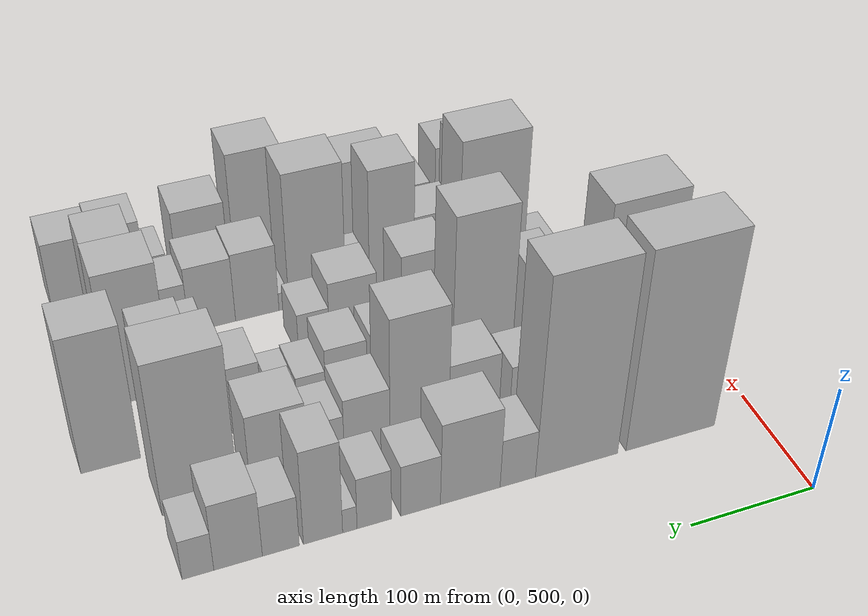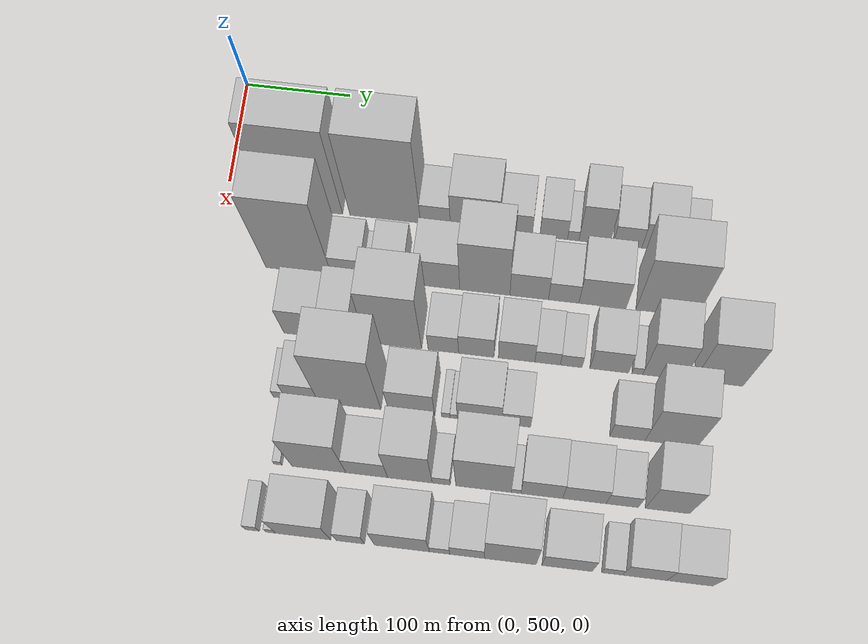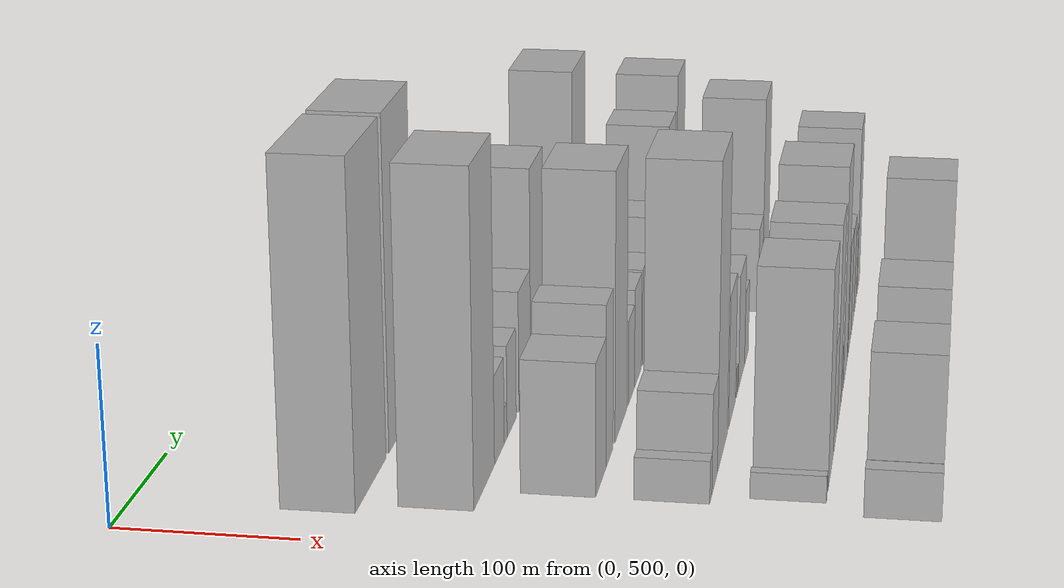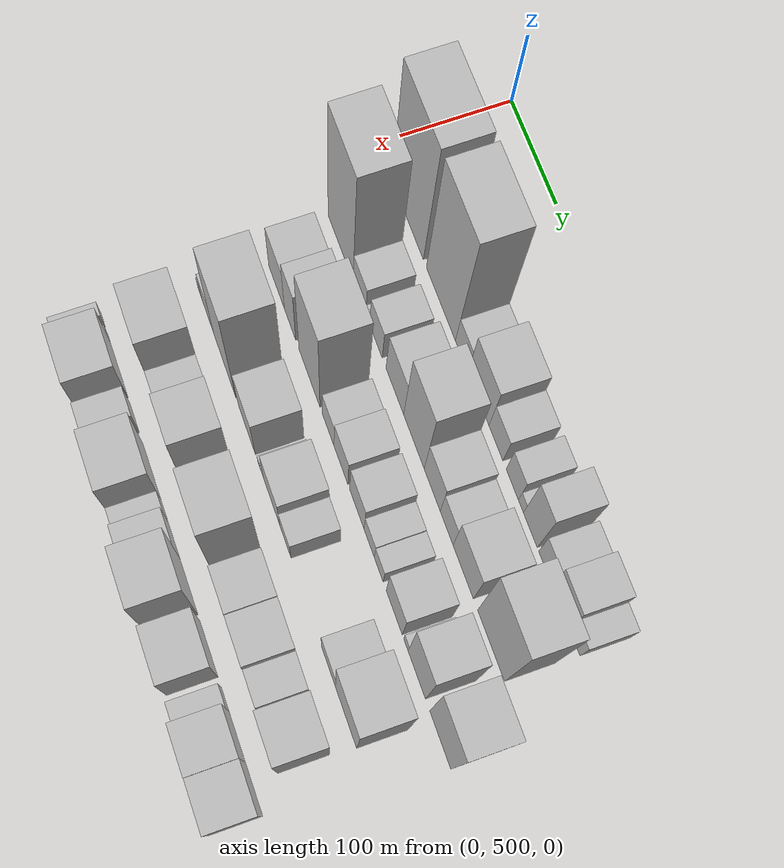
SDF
<sdf version="1.6">
 <world name="default">
  <model name="building_44">
   <static>1</static>
   <pose>100.0000 573.1640 0 0.000000 0.000000 0.000000</pose>
   <link name="link">
    <pose>0 0 96.00 0 0 0</pose>
    <collision name="collision"><geometry><box><size>40.0000 74.3101 192.0000</size></box></geometry></collision>
    <visual name="visual">
     <cast_shadows>0</cast_shadows>
     <geometry><box><size>40.0000 74.3101 192.0000</size></box></geometry>
     <material>
      <script>
       <uri>model://HANNAS_wall/materials/scripts</uri>
       <uri>model://HANNAS_wall/materials/textures</uri>
       <name>vrc/HANNAS_wall</name>
      </script>
     </material>
    </visual>
   </link>
  </model>
  <model name="building_45">
   <static>1</static>
   <pose>100.0000 650.6175 0 0.000000 0.000000 0.000000</pose>
   <link name="link">
    <pose>0 0 96.00 0 0 0</pose>
    <collision name="collision"><geometry><box><size>40.0000 66.5969 192.0000</size></box></geometry></collision>
    <visual name="visual">
     <cast_shadows>0</cast_shadows>
     <geometry><box><size>40.0000 66.5969 192.0000</size></box></geometry>
     <material>
      <script>
       <uri>model://HANNAS_wall/materials/scripts</uri>
       <uri>model://HANNAS_wall/materials/textures</uri>
       <name>vrc/HANNAS_wall</name>
      </script>
     </material>
    </visual>
   </link>
  </model>
  <model name="building_46">
   <static>1</static>
   <pose>100.0000 697.9124 0 0.000000 0.000000 0.000000</pose>
   <link name="link">
    <pose>0 0 24.00 0 0 0</pose>
    <collision name="collision"><geometry><box><size>40.0000 27.9930 48.0000</size></box></geometry></collision>
    <visual name="visual">
     <cast_shadows>0</cast_shadows>
     <geometry><box><size>40.0000 27.9930 48.0000</size></box></geometry>
     <material>
      <script>
       <uri>model://HANNAS_wall/materials/scripts</uri>
       <uri>model://HANNAS_wall/materials/textures</uri>
       <name>vrc/HANNAS_wall</name>
      </script>
     </material>
    </visual>
   </link>
  </model>
  <model name="building_47">
   <static>1</static>
   <pose>100.0000 735.1295 0 0.000000 0.000000 0.000000</pose>
   <link name="link">
    <pose>0 0 40.50 0 0 0</pose>
    <collision name="collision"><geometry><box><size>40.0000 46.4411 81.0000</size></box></geometry></collision>
    <visual name="visual">
     <cast_shadows>0</cast_shadows>
     <geometry><box><size>40.0000 46.4411 81.0000</size></box></geometry>
     <material>
      <script>
       <uri>model://HANNAS_wall/materials/scripts</uri>
       <uri>model://HANNAS_wall/materials/textures</uri>
       <name>vrc/HANNAS_wall</name>
      </script>
     </material>
    </visual>
   </link>
  </model>
  <model name="building_48">
   <static>1</static>
   <pose>100.0000 773.4925 0 0.000000 0.000000 0.000000</pose>
   <link name="link">
    <pose>0 0 25.50 0 0 0</pose>
    <collision name="collision"><geometry><box><size>40.0000 30.2850 51.0000</size></box></geometry></collision>
    <visual name="visual">
     <cast_shadows>0</cast_shadows>
     <geometry><box><size>40.0000 30.2850 51.0000</size></box></geometry>
     <material>
      <script>
       <uri>model://HANNAS_wall/materials/scripts</uri>
       <uri>model://HANNAS_wall/materials/textures</uri>
       <name>vrc/HANNAS_wall</name>
      </script>
     </material>
    </visual>
   </link>
  </model>
  <model name="building_49">
   <static>1</static>
   <pose>100.0000 808.5586 0 0.000000 0.000000 0.000000</pose>
   <link name="link">
    <pose>0 0 25.50 0 0 0</pose>
    <collision name="collision"><geometry><box><size>40.0000 25.8473 51.0000</size></box></geometry></collision>
    <visual name="visual">
     <cast_shadows>0</cast_shadows>
     <geometry><box><size>40.0000 25.8473 51.0000</size></box></geometry>
     <material>
      <script>
       <uri>model://HANNAS_wall/materials/scripts</uri>
       <uri>model://HANNAS_wall/materials/textures</uri>
       <name>vrc/HANNAS_wall</name>
      </script>
     </material>
    </visual>
   </link>
  </model>
  <model name="building_50">
   <static>1</static>
   <pose>100.0000 826.8289 0 0.000000 0.000000 0.000000</pose>
   <link name="link">
    <pose>0 0 12.00 0 0 0</pose>
    <collision name="collision"><geometry><box><size>40.0000 10.6932 24.0000</size></box></geometry></collision>
    <visual name="visual">
     <cast_shadows>0</cast_shadows>
     <geometry><box><size>40.0000 10.6932 24.0000</size></box></geometry>
     <material>
      <script>
       <uri>model://HANNAS_wall/materials/scripts</uri>
       <uri>model://HANNAS_wall/materials/textures</uri>
       <name>vrc/HANNAS_wall</name>
      </script>
     </material>
    </visual>
   </link>
  </model>
  <model name="building_51">
   <static>1</static>
   <pose>100.0000 846.5894 0 0.000000 0.000000 0.000000</pose>
   <link name="link">
    <pose>0 0 46.50 0 0 0</pose>
    <collision name="collision"><geometry><box><size>40.0000 28.8278 93.0000</size></box></geometry></collision>
    <visual name="visual">
     <cast_shadows>0</cast_shadows>
     <geometry><box><size>40.0000 28.8278 93.0000</size></box></geometry>
     <material>
      <script>
       <uri>model://HANNAS_wall/materials/scripts</uri>
       <uri>model://HANNAS_wall/materials/textures</uri>
       <name>vrc/HANNAS_wall</name>
      </script>
     </material>
    </visual>
   </link>
  </model>
  <model name="building_52">
   <static>1</static>
   <pose>100.0000 877.4008 0 0.000000 0.000000 0.000000</pose>
   <link name="link">
    <pose>0 0 25.50 0 0 0</pose>
    <collision name="collision"><geometry><box><size>40.0000 26.7949 51.0000</size></box></geometry></collision>
    <visual name="visual">
     <cast_shadows>0</cast_shadows>
     <geometry><box><size>40.0000 26.7949 51.0000</size></box></geometry>
     <material>
      <script>
       <uri>model://HANNAS_wall/materials/scripts</uri>
       <uri>model://HANNAS_wall/materials/textures</uri>
       <name>vrc/HANNAS_wall</name>
      </script>
     </material>
    </visual>
   </link>
  </model>
  <model name="building_53">
   <static>1</static>
   <pose>100.0000 908.1045 0 0.000000 0.000000 0.000000</pose>
   <link name="link">
    <pose>0 0 33.00 0 0 0</pose>
    <collision name="collision"><geometry><box><size>40.0000 34.6125 66.0000</size></box></geometry></collision>
    <visual name="visual">
     <cast_shadows>0</cast_shadows>
     <geometry><box><size>40.0000 34.6125 66.0000</size></box></geometry>
     <material>
      <script>
       <uri>model://HANNAS_wall/materials/scripts</uri>
       <uri>model://HANNAS_wall/materials/textures</uri>
       <name>vrc/HANNAS_wall</name>
      </script>
     </material>
    </visual>
   </link>
  </model>
  <model name="building_54">
   <static>1</static>
   <pose>100.0000 936.5888 0 0.000000 0.000000 0.000000</pose>
   <link name="link">
    <pose>0 0 19.50 0 0 0</pose>
    <collision name="collision"><geometry><box><size>40.0000 22.3562 39.0000</size></box></geometry></collision>
    <visual name="visual">
     <cast_shadows>0</cast_shadows>
     <geometry><box><size>40.0000 22.3562 39.0000</size></box></geometry>
     <material>
      <script>
       <uri>model://HANNAS_wall/materials/scripts</uri>
       <uri>model://HANNAS_wall/materials/textures</uri>
       <name>vrc/HANNAS_wall</name>
      </script>
     </material>
    </visual>
   </link>
  </model>
  <model name="building_100">
   <static>1</static>
   <pose>160.0000 578.3323 0 0.000000 0.000000 0.000000</pose>
   <link name="link">
    <pose>0 0 93.00 0 0 0</pose>
    <collision name="collision"><geometry><box><size>40.0000 61.0512 186.0000</size></box></geometry></collision>
    <visual name="visual">
     <cast_shadows>0</cast_shadows>
     <geometry><box><size>40.0000 61.0512 186.0000</size></box></geometry>
     <material>
      <script>
       <uri>model://HANNAS_wall/materials/scripts</uri>
       <uri>model://HANNAS_wall/materials/textures</uri>
       <name>vrc/HANNAS_wall</name>
      </script>
     </material>
    </visual>
   </link>
  </model>
  <model name="building_101">
   <static>1</static>
   <pose>160.0000 624.1365 0 0.000000 0.000000 0.000000</pose>
   <link name="link">
    <pose>0 0 25.50 0 0 0</pose>
    <collision name="collision"><geometry><box><size>40.0000 30.5573 51.0000</size></box></geometry></collision>
    <visual name="visual">
     <cast_shadows>0</cast_shadows>
     <geometry><box><size>40.0000 30.5573 51.0000</size></box></geometry>
     <material>
      <script>
       <uri>model://HANNAS_wall/materials/scripts</uri>
       <uri>model://HANNAS_wall/materials/textures</uri>
       <name>vrc/HANNAS_wall</name>
      </script>
     </material>
    </visual>
   </link>
  </model>
  <model name="building_102">
   <static>1</static>
   <pose>160.0000 643.8614 0 0.000000 0.000000 0.000000</pose>
   <link name="link">
    <pose>0 0 10.50 0 0 0</pose>
    <collision name="collision"><geometry><box><size>40.0000 8.8925 21.0000</size></box></geometry></collision>
    <visual name="visual">
     <cast_shadows>0</cast_shadows>
     <geometry><box><size>40.0000 8.8925 21.0000</size></box></geometry>
     <material>
      <script>
       <uri>model://HANNAS_wall/materials/scripts</uri>
       <uri>model://HANNAS_wall/materials/textures</uri>
       <name>vrc/HANNAS_wall</name>
      </script>
     </material>
    </visual>
   </link>
  </model>
  <model name="building_103">
   <static>1</static>
   <pose>160.0000 663.3234 0 0.000000 0.000000 0.000000</pose>
   <link name="link">
    <pose>0 0 27.00 0 0 0</pose>
    <collision name="collision"><geometry><box><size>40.0000 30.0315 54.0000</size></box></geometry></collision>
    <visual name="visual">
     <cast_shadows>0</cast_shadows>
     <geometry><box><size>40.0000 30.0315 54.0000</size></box></geometry>
     <material>
      <script>
       <uri>model://HANNAS_wall/materials/scripts</uri>
       <uri>model://HANNAS_wall/materials/textures</uri>
       <name>vrc/HANNAS_wall</name>
      </script>
     </material>
    </visual>
   </link>
  </model>
  <model name="building_104">
   <static>1</static>
   <pose>160.0000 707.6812 0 0.000000 0.000000 0.000000</pose>
   <link name="link">
    <pose>0 0 36.00 0 0 0</pose>
    <collision name="collision"><geometry><box><size>40.0000 40.6840 72.0000</size></box></geometry></collision>
    <visual name="visual">
     <cast_shadows>0</cast_shadows>
     <geometry><box><size>40.0000 40.6840 72.0000</size></box></geometry>
     <material>
      <script>
       <uri>model://HANNAS_wall/materials/scripts</uri>
       <uri>model://HANNAS_wall/materials/textures</uri>
       <name>vrc/HANNAS_wall</name>
      </script>
     </material>
    </visual>
   </link>
  </model>
  <model name="building_105">
   <static>1</static>
   <pose>160.0000 751.2614 0 0.000000 0.000000 0.000000</pose>
   <link name="link">
    <pose>0 0 66.00 0 0 0</pose>
    <collision name="collision"><geometry><box><size>40.0000 46.4765 132.0000</size></box></geometry></collision>
    <visual name="visual">
     <cast_shadows>0</cast_shadows>
     <geometry><box><size>40.0000 46.4765 132.0000</size></box></geometry>
     <material>
      <script>
       <uri>model://HANNAS_wall/materials/scripts</uri>
       <uri>model://HANNAS_wall/materials/textures</uri>
       <name>vrc/HANNAS_wall</name>
      </script>
     </material>
    </visual>
   </link>
  </model>
  <model name="building_106">
   <static>1</static>
   <pose>160.0000 792.2483 0 0.000000 0.000000 0.000000</pose>
   <link name="link">
    <pose>0 0 33.00 0 0 0</pose>
    <collision name="collision"><geometry><box><size>40.0000 35.4972 66.0000</size></box></geometry></collision>
    <visual name="visual">
     <cast_shadows>0</cast_shadows>
     <geometry><box><size>40.0000 35.4972 66.0000</size></box></geometry>
     <material>
      <script>
       <uri>model://HANNAS_wall/materials/scripts</uri>
       <uri>model://HANNAS_wall/materials/textures</uri>
       <name>vrc/HANNAS_wall</name>
      </script>
     </material>
    </visual>
   </link>
  </model>
  <model name="building_107">
   <static>1</static>
   <pose>160.0000 824.0772 0 0.000000 0.000000 0.000000</pose>
   <link name="link">
    <pose>0 0 25.50 0 0 0</pose>
    <collision name="collision"><geometry><box><size>40.0000 28.1607 51.0000</size></box></geometry></collision>
    <visual name="visual">
     <cast_shadows>0</cast_shadows>
     <geometry><box><size>40.0000 28.1607 51.0000</size></box></geometry>
     <material>
      <script>
       <uri>model://HANNAS_wall/materials/scripts</uri>
       <uri>model://HANNAS_wall/materials/textures</uri>
       <name>vrc/HANNAS_wall</name>
      </script>
     </material>
    </visual>
   </link>
  </model>
  <model name="building_108">
   <static>1</static>
   <pose>160.0000 859.8783 0 0.000000 0.000000 0.000000</pose>
   <link name="link">
    <pose>0 0 37.50 0 0 0</pose>
    <collision name="collision"><geometry><box><size>40.0000 43.4415 75.0000</size></box></geometry></collision>
    <visual name="visual">
     <cast_shadows>0</cast_shadows>
     <geometry><box><size>40.0000 43.4415 75.0000</size></box></geometry>
     <material>
      <script>
       <uri>model://HANNAS_wall/materials/scripts</uri>
       <uri>model://HANNAS_wall/materials/textures</uri>
       <name>vrc/HANNAS_wall</name>
      </script>
     </material>
    </visual>
   </link>
  </model>
  <model name="building_109">
   <static>1</static>
   <pose>160.0000 918.6796 0 0.000000 0.000000 0.000000</pose>
   <link name="link">
    <pose>0 0 73.50 0 0 0</pose>
    <collision name="collision"><geometry><box><size>40.0000 56.1612 147.0000</size></box></geometry></collision>
    <visual name="visual">
     <cast_shadows>0</cast_shadows>
     <geometry><box><size>40.0000 56.1612 147.0000</size></box></geometry>
     <material>
      <script>
       <uri>model://HANNAS_wall/materials/scripts</uri>
       <uri>model://HANNAS_wall/materials/textures</uri>
       <name>vrc/HANNAS_wall</name>
      </script>
     </material>
    </visual>
   </link>
  </model>
  <model name="building_150">
   <static>1</static>
   <pose>220.0000 593.9642 0 0.000000 0.000000 0.000000</pose>
   <link name="link">
    <pose>0 0 37.50 0 0 0</pose>
    <collision name="collision"><geometry><box><size>40.0000 39.5296 75.0000</size></box></geometry></collision>
    <visual name="visual">
     <cast_shadows>0</cast_shadows>
     <geometry><box><size>40.0000 39.5296 75.0000</size></box></geometry>
     <material>
      <script>
       <uri>model://HANNAS_wall/materials/scripts</uri>
       <uri>model://HANNAS_wall/materials/textures</uri>
       <name>vrc/HANNAS_wall</name>
      </script>
     </material>
    </visual>
   </link>
  </model>
  <model name="building_151">
   <static>1</static>
   <pose>220.0000 627.7251 0 0.000000 0.000000 0.000000</pose>
   <link name="link">
    <pose>0 0 46.50 0 0 0</pose>
    <collision name="collision"><geometry><box><size>40.0000 27.9920 93.0000</size></box></geometry></collision>
    <visual name="visual">
     <cast_shadows>0</cast_shadows>
     <geometry><box><size>40.0000 27.9920 93.0000</size></box></geometry>
     <material>
      <script>
       <uri>model://HANNAS_wall/materials/scripts</uri>
       <uri>model://HANNAS_wall/materials/textures</uri>
       <name>vrc/HANNAS_wall</name>
      </script>
     </material>
    </visual>
   </link>
  </model>
  <model name="building_152">
   <static>1</static>
   <pose>220.0000 675.2012 0 0.000000 0.000000 0.000000</pose>
   <link name="link">
    <pose>0 0 78.00 0 0 0</pose>
    <collision name="collision"><geometry><box><size>40.0000 50.9604 156.0000</size></box></geometry></collision>
    <visual name="visual">
     <cast_shadows>0</cast_shadows>
     <geometry><box><size>40.0000 50.9604 156.0000</size></box></geometry>
     <material>
      <script>
       <uri>model://HANNAS_wall/materials/scripts</uri>
       <uri>model://HANNAS_wall/materials/textures</uri>
       <name>vrc/HANNAS_wall</name>
      </script>
     </material>
    </visual>
   </link>
  </model>
  <model name="building_153">
   <static>1</static>
   <pose>220.0000 720.5836 0 0.000000 0.000000 0.000000</pose>
   <link name="link">
    <pose>0 0 25.50 0 0 0</pose>
    <collision name="collision"><geometry><box><size>40.0000 27.8044 51.0000</size></box></geometry></collision>
    <visual name="visual">
     <cast_shadows>0</cast_shadows>
     <geometry><box><size>40.0000 27.8044 51.0000</size></box></geometry>
     <material>
      <script>
       <uri>model://HANNAS_wall/materials/scripts</uri>
       <uri>model://HANNAS_wall/materials/textures</uri>
       <name>vrc/HANNAS_wall</name>
      </script>
     </material>
    </visual>
   </link>
  </model>
  <model name="building_154">
   <static>1</static>
   <pose>220.0000 750.6115 0 0.000000 0.000000 0.000000</pose>
   <link name="link">
    <pose>0 0 30.00 0 0 0</pose>
    <collision name="collision"><geometry><box><size>40.0000 32.2514 60.0000</size></box></geometry></collision>
    <visual name="visual">
     <cast_shadows>0</cast_shadows>
     <geometry><box><size>40.0000 32.2514 60.0000</size></box></geometry>
     <material>
      <script>
       <uri>model://HANNAS_wall/materials/scripts</uri>
       <uri>model://HANNAS_wall/materials/textures</uri>
       <name>vrc/HANNAS_wall</name>
      </script>
     </material>
    </visual>
   </link>
  </model>
  <model name="building_155">
   <static>1</static>
   <pose>220.0000 787.3748 0 0.000000 0.000000 0.000000</pose>
   <link name="link">
    <pose>0 0 30.00 0 0 0</pose>
    <collision name="collision"><geometry><box><size>40.0000 33.2751 60.0000</size></box></geometry></collision>
    <visual name="visual">
     <cast_shadows>0</cast_shadows>
     <geometry><box><size>40.0000 33.2751 60.0000</size></box></geometry>
     <material>
      <script>
       <uri>model://HANNAS_wall/materials/scripts</uri>
       <uri>model://HANNAS_wall/materials/textures</uri>
       <name>vrc/HANNAS_wall</name>
      </script>
     </material>
    </visual>
   </link>
  </model>
  <model name="building_156">
   <static>1</static>
   <pose>220.0000 815.6012 0 0.000000 0.000000 0.000000</pose>
   <link name="link">
    <pose>0 0 19.50 0 0 0</pose>
    <collision name="collision"><geometry><box><size>40.0000 23.1776 39.0000</size></box></geometry></collision>
    <visual name="visual">
     <cast_shadows>0</cast_shadows>
     <geometry><box><size>40.0000 23.1776 39.0000</size></box></geometry>
     <material>
      <script>
       <uri>model://HANNAS_wall/materials/scripts</uri>
       <uri>model://HANNAS_wall/materials/textures</uri>
       <name>vrc/HANNAS_wall</name>
      </script>
     </material>
    </visual>
   </link>
  </model>
  <model name="building_157">
   <static>1</static>
   <pose>220.0000 837.1201 0 0.000000 0.000000 0.000000</pose>
   <link name="link">
    <pose>0 0 18.00 0 0 0</pose>
    <collision name="collision"><geometry><box><size>40.0000 19.8602 36.0000</size></box></geometry></collision>
    <visual name="visual">
     <cast_shadows>0</cast_shadows>
     <geometry><box><size>40.0000 19.8602 36.0000</size></box></geometry>
     <material>
      <script>
       <uri>model://HANNAS_wall/materials/scripts</uri>
       <uri>model://HANNAS_wall/materials/textures</uri>
       <name>vrc/HANNAS_wall</name>
      </script>
     </material>
    </visual>
   </link>
  </model>
  <model name="building_158">
   <static>1</static>
   <pose>220.0000 871.6521 0 0.000000 0.000000 0.000000</pose>
   <link name="link">
    <pose>0 0 33.00 0 0 0</pose>
    <collision name="collision"><geometry><box><size>40.0000 35.2038 66.0000</size></box></geometry></collision>
    <visual name="visual">
     <cast_shadows>0</cast_shadows>
     <geometry><box><size>40.0000 35.2038 66.0000</size></box></geometry>
     <material>
      <script>
       <uri>model://HANNAS_wall/materials/scripts</uri>
       <uri>model://HANNAS_wall/materials/textures</uri>
       <name>vrc/HANNAS_wall</name>
      </script>
     </material>
    </visual>
   </link>
  </model>
  <model name="building_159">
   <static>1</static>
   <pose>220.0000 897.1554 0 0.000000 0.000000 0.000000</pose>
   <link name="link">
    <pose>0 0 10.50 0 0 0</pose>
    <collision name="collision"><geometry><box><size>40.0000 9.8029 21.0000</size></box></geometry></collision>
    <visual name="visual">
     <cast_shadows>0</cast_shadows>
     <geometry><box><size>40.0000 9.8029 21.0000</size></box></geometry>
     <material>
      <script>
       <uri>model://HANNAS_wall/materials/scripts</uri>
       <uri>model://HANNAS_wall/materials/textures</uri>
       <name>vrc/HANNAS_wall</name>
      </script>
     </material>
    </visual>
   </link>
  </model>
  <model name="building_160">
   <static>1</static>
   <pose>220.0000 920.7293 0 0.000000 0.000000 0.000000</pose>
   <link name="link">
    <pose>0 0 55.50 0 0 0</pose>
    <collision name="collision"><geometry><box><size>40.0000 37.3447 111.0000</size></box></geometry></collision>
    <visual name="visual">
     <cast_shadows>0</cast_shadows>
     <geometry><box><size>40.0000 37.3447 111.0000</size></box></geometry>
     <material>
      <script>
       <uri>model://HANNAS_wall/materials/scripts</uri>
       <uri>model://HANNAS_wall/materials/textures</uri>
       <name>vrc/HANNAS_wall</name>
      </script>
     </material>
    </visual>
   </link>
  </model>
  <model name="building_161">
   <static>1</static>
   <pose>220.0000 970.5964 0 0.000000 0.000000 0.000000</pose>
   <link name="link">
    <pose>0 0 66.00 0 0 0</pose>
    <collision name="collision"><geometry><box><size>40.0000 44.3895 132.0000</size></box></geometry></collision>
    <visual name="visual">
     <cast_shadows>0</cast_shadows>
     <geometry><box><size>40.0000 44.3895 132.0000</size></box></geometry>
     <material>
      <script>
       <uri>model://HANNAS_wall/materials/scripts</uri>
       <uri>model://HANNAS_wall/materials/textures</uri>
       <name>vrc/HANNAS_wall</name>
      </script>
     </material>
    </visual>
   </link>
  </model>
  <model name="building_208">
   <static>1</static>
   <pose>280.0000 579.8340 0 0.000000 0.000000 0.000000</pose>
   <link name="link">
    <pose>0 0 12.00 0 0 0</pose>
    <collision name="collision"><geometry><box><size>40.0000 11.1506 24.0000</size></box></geometry></collision>
    <visual name="visual">
     <cast_shadows>0</cast_shadows>
     <geometry><box><size>40.0000 11.1506 24.0000</size></box></geometry>
     <material>
      <script>
       <uri>model://HANNAS_wall/materials/scripts</uri>
       <uri>model://HANNAS_wall/materials/textures</uri>
       <name>vrc/HANNAS_wall</name>
      </script>
     </material>
    </visual>
   </link>
  </model>
  <model name="building_209">
   <static>1</static>
   <pose>280.0000 600.3737 0 0.000000 0.000000 0.000000</pose>
   <link name="link">
    <pose>0 0 28.50 0 0 0</pose>
    <collision name="collision"><geometry><box><size>40.0000 29.9287 57.0000</size></box></geometry></collision>
    <visual name="visual">
     <cast_shadows>0</cast_shadows>
     <geometry><box><size>40.0000 29.9287 57.0000</size></box></geometry>
     <material>
      <script>
       <uri>model://HANNAS_wall/materials/scripts</uri>
       <uri>model://HANNAS_wall/materials/textures</uri>
       <name>vrc/HANNAS_wall</name>
      </script>
     </material>
    </visual>
   </link>
  </model>
  <model name="building_210">
   <static>1</static>
   <pose>280.0000 643.5683 0 0.000000 0.000000 0.000000</pose>
   <link name="link">
    <pose>0 0 87.00 0 0 0</pose>
    <collision name="collision"><geometry><box><size>40.0000 56.4606 174.0000</size></box></geometry></collision>
    <visual name="visual">
     <cast_shadows>0</cast_shadows>
     <geometry><box><size>40.0000 56.4606 174.0000</size></box></geometry>
     <material>
      <script>
       <uri>model://HANNAS_wall/materials/scripts</uri>
       <uri>model://HANNAS_wall/materials/textures</uri>
       <name>vrc/HANNAS_wall</name>
      </script>
     </material>
    </visual>
   </link>
  </model>
  <model name="building_211">
   <static>1</static>
   <pose>280.0000 699.6708 0 0.000000 0.000000 0.000000</pose>
   <link name="link">
    <pose>0 0 39.00 0 0 0</pose>
    <collision name="collision"><geometry><box><size>40.0000 41.7442 78.0000</size></box></geometry></collision>
    <visual name="visual">
     <cast_shadows>0</cast_shadows>
     <geometry><box><size>40.0000 41.7442 78.0000</size></box></geometry>
     <material>
      <script>
       <uri>model://HANNAS_wall/materials/scripts</uri>
       <uri>model://HANNAS_wall/materials/textures</uri>
       <name>vrc/HANNAS_wall</name>
      </script>
     </material>
    </visual>
   </link>
  </model>
  <model name="building_212">
   <static>1</static>
   <pose>280.0000 730.4052 0 0.000000 0.000000 0.000000</pose>
   <link name="link">
    <pose>0 0 9.00 0 0 0</pose>
    <collision name="collision"><geometry><box><size>40.0000 7.7247 18.0000</size></box></geometry></collision>
    <visual name="visual">
     <cast_shadows>0</cast_shadows>
     <geometry><box><size>40.0000 7.7247 18.0000</size></box></geometry>
     <material>
      <script>
       <uri>model://HANNAS_wall/materials/scripts</uri>
       <uri>model://HANNAS_wall/materials/textures</uri>
       <name>vrc/HANNAS_wall</name>
      </script>
     </material>
    </visual>
   </link>
  </model>
  <model name="building_213">
   <static>1</static>
   <pose>280.0000 737.5304 0 0.000000 0.000000 0.000000</pose>
   <link name="link">
    <pose>0 0 7.50 0 0 0</pose>
    <collision name="collision"><geometry><box><size>40.0000 6.5257 15.0000</size></box></geometry></collision>
    <visual name="visual">
     <cast_shadows>0</cast_shadows>
     <geometry><box><size>40.0000 6.5257 15.0000</size></box></geometry>
     <material>
      <script>
       <uri>model://HANNAS_wall/materials/scripts</uri>
       <uri>model://HANNAS_wall/materials/textures</uri>
       <name>vrc/HANNAS_wall</name>
      </script>
     </material>
    </visual>
   </link>
  </model>
  <model name="building_214">
   <static>1</static>
   <pose>280.0000 760.8553 0 0.000000 0.000000 0.000000</pose>
   <link name="link">
    <pose>0 0 34.50 0 0 0</pose>
    <collision name="collision"><geometry><box><size>40.0000 40.1241 69.0000</size></box></geometry></collision>
    <visual name="visual">
     <cast_shadows>0</cast_shadows>
     <geometry><box><size>40.0000 40.1241 69.0000</size></box></geometry>
     <material>
      <script>
       <uri>model://HANNAS_wall/materials/scripts</uri>
       <uri>model://HANNAS_wall/materials/textures</uri>
       <name>vrc/HANNAS_wall</name>
      </script>
     </material>
    </visual>
   </link>
  </model>
  <model name="building_215">
   <static>1</static>
   <pose>280.0000 793.8574 0 0.000000 0.000000 0.000000</pose>
   <link name="link">
    <pose>0 0 22.50 0 0 0</pose>
    <collision name="collision"><geometry><box><size>40.0000 25.8800 45.0000</size></box></geometry></collision>
    <visual name="visual">
     <cast_shadows>0</cast_shadows>
     <geometry><box><size>40.0000 25.8800 45.0000</size></box></geometry>
     <material>
      <script>
       <uri>model://HANNAS_wall/materials/scripts</uri>
       <uri>model://HANNAS_wall/materials/textures</uri>
       <name>vrc/HANNAS_wall</name>
      </script>
     </material>
    </visual>
   </link>
  </model>
  <model name="building_216">
   <static>1</static>
   <pose>280.0000 893.4035 0 0.000000 0.000000 0.000000</pose>
   <link name="link">
    <pose>0 0 27.00 0 0 0</pose>
    <collision name="collision"><geometry><box><size>40.0000 31.7374 54.0000</size></box></geometry></collision>
    <visual name="visual">
     <cast_shadows>0</cast_shadows>
     <geometry><box><size>40.0000 31.7374 54.0000</size></box></geometry>
     <material>
      <script>
       <uri>model://HANNAS_wall/materials/scripts</uri>
       <uri>model://HANNAS_wall/materials/textures</uri>
       <name>vrc/HANNAS_wall</name>
      </script>
     </material>
    </visual>
   </link>
  </model>
  <model name="building_217">
   <static>1</static>
   <pose>280.0000 932.7168 0 0.000000 0.000000 0.000000</pose>
   <link name="link">
    <pose>0 0 64.50 0 0 0</pose>
    <collision name="collision"><geometry><box><size>40.0000 46.8893 129.0000</size></box></geometry></collision>
    <visual name="visual">
     <cast_shadows>0</cast_shadows>
     <geometry><box><size>40.0000 46.8893 129.0000</size></box></geometry>
     <material>
      <script>
       <uri>model://HANNAS_wall/materials/scripts</uri>
       <uri>model://HANNAS_wall/materials/textures</uri>
       <name>vrc/HANNAS_wall</name>
      </script>
     </material>
    </visual>
   </link>
  </model>
  <model name="building_262">
   <static>1</static>
   <pose>340.0000 588.1282 0 0.000000 0.000000 0.000000</pose>
   <link name="link">
    <pose>0 0 7.50 0 0 0</pose>
    <collision name="collision"><geometry><box><size>40.0000 7.2759 15.0000</size></box></geometry></collision>
    <visual name="visual">
     <cast_shadows>0</cast_shadows>
     <geometry><box><size>40.0000 7.2759 15.0000</size></box></geometry>
     <material>
      <script>
       <uri>model://HANNAS_wall/materials/scripts</uri>
       <uri>model://HANNAS_wall/materials/textures</uri>
       <name>vrc/HANNAS_wall</name>
      </script>
     </material>
    </visual>
   </link>
  </model>
  <model name="building_263">
   <static>1</static>
   <pose>340.0000 624.8581 0 0.000000 0.000000 0.000000</pose>
   <link name="link">
    <pose>0 0 61.50 0 0 0</pose>
    <collision name="collision"><geometry><box><size>40.0000 48.1839 123.0000</size></box></geometry></collision>
    <visual name="visual">
     <cast_shadows>0</cast_shadows>
     <geometry><box><size>40.0000 48.1839 123.0000</size></box></geometry>
     <material>
      <script>
       <uri>model://HANNAS_wall/materials/scripts</uri>
       <uri>model://HANNAS_wall/materials/textures</uri>
       <name>vrc/HANNAS_wall</name>
      </script>
     </material>
    </visual>
   </link>
  </model>
  <model name="building_264">
   <static>1</static>
   <pose>340.0000 667.6527 0 0.000000 0.000000 0.000000</pose>
   <link name="link">
    <pose>0 0 31.50 0 0 0</pose>
    <collision name="collision"><geometry><box><size>40.0000 37.4052 63.0000</size></box></geometry></collision>
    <visual name="visual">
     <cast_shadows>0</cast_shadows>
     <geometry><box><size>40.0000 37.4052 63.0000</size></box></geometry>
     <material>
      <script>
       <uri>model://HANNAS_wall/materials/scripts</uri>
       <uri>model://HANNAS_wall/materials/textures</uri>
       <name>vrc/HANNAS_wall</name>
      </script>
     </material>
    </visual>
   </link>
  </model>
  <model name="building_265">
   <static>1</static>
   <pose>340.0000 706.1811 0 0.000000 0.000000 0.000000</pose>
   <link name="link">
    <pose>0 0 60.00 0 0 0</pose>
    <collision name="collision"><geometry><box><size>40.0000 39.6515 120.0000</size></box></geometry></collision>
    <visual name="visual">
     <cast_shadows>0</cast_shadows>
     <geometry><box><size>40.0000 39.6515 120.0000</size></box></geometry>
     <material>
      <script>
       <uri>model://HANNAS_wall/materials/scripts</uri>
       <uri>model://HANNAS_wall/materials/textures</uri>
       <name>vrc/HANNAS_wall</name>
      </script>
     </material>
    </visual>
   </link>
  </model>
  <model name="building_266">
   <static>1</static>
   <pose>340.0000 733.9812 0 0.000000 0.000000 0.000000</pose>
   <link name="link">
    <pose>0 0 15.00 0 0 0</pose>
    <collision name="collision"><geometry><box><size>40.0000 15.9487 30.0000</size></box></geometry></collision>
    <visual name="visual">
     <cast_shadows>0</cast_shadows>
     <geometry><box><size>40.0000 15.9487 30.0000</size></box></geometry>
     <material>
      <script>
       <uri>model://HANNAS_wall/materials/scripts</uri>
       <uri>model://HANNAS_wall/materials/textures</uri>
       <name>vrc/HANNAS_wall</name>
      </script>
     </material>
    </visual>
   </link>
  </model>
  <model name="building_267">
   <static>1</static>
   <pose>340.0000 771.5563 0 0.000000 0.000000 0.000000</pose>
   <link name="link">
    <pose>0 0 67.50 0 0 0</pose>
    <collision name="collision"><geometry><box><size>40.0000 49.2016 135.0000</size></box></geometry></collision>
    <visual name="visual">
     <cast_shadows>0</cast_shadows>
     <geometry><box><size>40.0000 49.2016 135.0000</size></box></geometry>
     <material>
      <script>
       <uri>model://HANNAS_wall/materials/scripts</uri>
       <uri>model://HANNAS_wall/materials/textures</uri>
       <name>vrc/HANNAS_wall</name>
      </script>
     </material>
    </visual>
   </link>
  </model>
  <model name="building_268">
   <static>1</static>
   <pose>340.0000 800.4542 0 0.000000 0.000000 0.000000</pose>
   <link name="link">
    <pose>0 0 9.00 0 0 0</pose>
    <collision name="collision"><geometry><box><size>40.0000 8.5942 18.0000</size></box></geometry></collision>
    <visual name="visual">
     <cast_shadows>0</cast_shadows>
     <geometry><box><size>40.0000 8.5942 18.0000</size></box></geometry>
     <material>
      <script>
       <uri>model://HANNAS_wall/materials/scripts</uri>
       <uri>model://HANNAS_wall/materials/textures</uri>
       <name>vrc/HANNAS_wall</name>
      </script>
     </material>
    </visual>
   </link>
  </model>
  <model name="building_269">
   <static>1</static>
   <pose>340.0000 823.1435 0 0.000000 0.000000 0.000000</pose>
   <link name="link">
    <pose>0 0 34.50 0 0 0</pose>
    <collision name="collision"><geometry><box><size>40.0000 36.7844 69.0000</size></box></geometry></collision>
    <visual name="visual">
     <cast_shadows>0</cast_shadows>
     <geometry><box><size>40.0000 36.7844 69.0000</size></box></geometry>
     <material>
      <script>
       <uri>model://HANNAS_wall/materials/scripts</uri>
       <uri>model://HANNAS_wall/materials/textures</uri>
       <name>vrc/HANNAS_wall</name>
      </script>
     </material>
    </visual>
   </link>
  </model>
  <model name="building_270">
   <static>1</static>
   <pose>340.0000 860.8379 0 0.000000 0.000000 0.000000</pose>
   <link name="link">
    <pose>0 0 33.00 0 0 0</pose>
    <collision name="collision"><geometry><box><size>40.0000 38.6046 66.0000</size></box></geometry></collision>
    <visual name="visual">
     <cast_shadows>0</cast_shadows>
     <geometry><box><size>40.0000 38.6046 66.0000</size></box></geometry>
     <material>
      <script>
       <uri>model://HANNAS_wall/materials/scripts</uri>
       <uri>model://HANNAS_wall/materials/textures</uri>
       <name>vrc/HANNAS_wall</name>
      </script>
     </material>
    </visual>
   </link>
  </model>
  <model name="building_271">
   <static>1</static>
   <pose>340.0000 894.4227 0 0.000000 0.000000 0.000000</pose>
   <link name="link">
    <pose>0 0 25.50 0 0 0</pose>
    <collision name="collision"><geometry><box><size>40.0000 28.5650 51.0000</size></box></geometry></collision>
    <visual name="visual">
     <cast_shadows>0</cast_shadows>
     <geometry><box><size>40.0000 28.5650 51.0000</size></box></geometry>
     <material>
      <script>
       <uri>model://HANNAS_wall/materials/scripts</uri>
       <uri>model://HANNAS_wall/materials/textures</uri>
       <name>vrc/HANNAS_wall</name>
      </script>
     </material>
    </visual>
   </link>
  </model>
  <model name="building_272">
   <static>1</static>
   <pose>340.0000 934.3467 0 0.000000 0.000000 0.000000</pose>
   <link name="link">
    <pose>0 0 55.50 0 0 0</pose>
    <collision name="collision"><geometry><box><size>40.0000 39.2831 111.0000</size></box></geometry></collision>
    <visual name="visual">
     <cast_shadows>0</cast_shadows>
     <geometry><box><size>40.0000 39.2831 111.0000</size></box></geometry>
     <material>
      <script>
       <uri>model://HANNAS_wall/materials/scripts</uri>
       <uri>model://HANNAS_wall/materials/textures</uri>
       <name>vrc/HANNAS_wall</name>
      </script>
     </material>
    </visual>
   </link>
  </model>
  <model name="building_318">
   <static>1</static>
   <pose>400.0000 575.1442 0 0.000000 0.000000 0.000000</pose>
   <link name="link">
    <pose>0 0 13.50 0 0 0</pose>
    <collision name="collision"><geometry><box><size>40.0000 12.1465 27.0000</size></box></geometry></collision>
    <visual name="visual">
     <cast_shadows>0</cast_shadows>
     <geometry><box><size>40.0000 12.1465 27.0000</size></box></geometry>
     <material>
      <script>
       <uri>model://HANNAS_wall/materials/scripts</uri>
       <uri>model://HANNAS_wall/materials/textures</uri>
       <name>vrc/HANNAS_wall</name>
      </script>
     </material>
    </visual>
   </link>
  </model>
  <model name="building_319">
   <static>1</static>
   <pose>400.0000 591.5733 0 0.000000 0.000000 0.000000</pose>
   <link name="link">
    <pose>0 0 10.50 0 0 0</pose>
    <collision name="collision"><geometry><box><size>40.0000 8.7118 21.0000</size></box></geometry></collision>
    <visual name="visual">
     <cast_shadows>0</cast_shadows>
     <geometry><box><size>40.0000 8.7118 21.0000</size></box></geometry>
     <material>
      <script>
       <uri>model://HANNAS_wall/materials/scripts</uri>
       <uri>model://HANNAS_wall/materials/textures</uri>
       <name>vrc/HANNAS_wall</name>
      </script>
     </material>
    </visual>
   </link>
  </model>
  <model name="building_320">
   <static>1</static>
   <pose>400.0000 620.0715 0 0.000000 0.000000 0.000000</pose>
   <link name="link">
    <pose>0 0 40.50 0 0 0</pose>
    <collision name="collision"><geometry><box><size>40.0000 48.2844 81.0000</size></box></geometry></collision>
    <visual name="visual">
     <cast_shadows>0</cast_shadows>
     <geometry><box><size>40.0000 48.2844 81.0000</size></box></geometry>
     <material>
      <script>
       <uri>model://HANNAS_wall/materials/scripts</uri>
       <uri>model://HANNAS_wall/materials/textures</uri>
       <name>vrc/HANNAS_wall</name>
      </script>
     </material>
    </visual>
   </link>
  </model>
  <model name="building_321">
   <static>1</static>
   <pose>400.0000 661.6690 0 0.000000 0.000000 0.000000</pose>
   <link name="link">
    <pose>0 0 24.00 0 0 0</pose>
    <collision name="collision"><geometry><box><size>40.0000 24.9106 48.0000</size></box></geometry></collision>
    <visual name="visual">
     <cast_shadows>0</cast_shadows>
     <geometry><box><size>40.0000 24.9106 48.0000</size></box></geometry>
     <material>
      <script>
       <uri>model://HANNAS_wall/materials/scripts</uri>
       <uri>model://HANNAS_wall/materials/textures</uri>
       <name>vrc/HANNAS_wall</name>
      </script>
     </material>
    </visual>
   </link>
  </model>
  <model name="building_322">
   <static>1</static>
   <pose>400.0000 707.2125 0 0.000000 0.000000 0.000000</pose>
   <link name="link">
    <pose>0 0 43.50 0 0 0</pose>
    <collision name="collision"><geometry><box><size>40.0000 48.1764 87.0000</size></box></geometry></collision>
    <visual name="visual">
     <cast_shadows>0</cast_shadows>
     <geometry><box><size>40.0000 48.1764 87.0000</size></box></geometry>
     <material>
      <script>
       <uri>model://HANNAS_wall/materials/scripts</uri>
       <uri>model://HANNAS_wall/materials/textures</uri>
       <name>vrc/HANNAS_wall</name>
      </script>
     </material>
    </visual>
   </link>
  </model>
  <model name="building_323">
   <static>1</static>
   <pose>400.0000 740.2594 0 0.000000 0.000000 0.000000</pose>
   <link name="link">
    <pose>0 0 16.50 0 0 0</pose>
    <collision name="collision"><geometry><box><size>40.0000 17.9174 33.0000</size></box></geometry></collision>
    <visual name="visual">
     <cast_shadows>0</cast_shadows>
     <geometry><box><size>40.0000 17.9174 33.0000</size></box></geometry>
     <material>
      <script>
       <uri>model://HANNAS_wall/materials/scripts</uri>
       <uri>model://HANNAS_wall/materials/textures</uri>
       <name>vrc/HANNAS_wall</name>
      </script>
     </material>
    </visual>
   </link>
  </model>
  <model name="building_324">
   <static>1</static>
   <pose>400.0000 764.3929 0 0.000000 0.000000 0.000000</pose>
   <link name="link">
    <pose>0 0 27.00 0 0 0</pose>
    <collision name="collision"><geometry><box><size>40.0000 30.3497 54.0000</size></box></geometry></collision>
    <visual name="visual">
     <cast_shadows>0</cast_shadows>
     <geometry><box><size>40.0000 30.3497 54.0000</size></box></geometry>
     <material>
      <script>
       <uri>model://HANNAS_wall/materials/scripts</uri>
       <uri>model://HANNAS_wall/materials/textures</uri>
       <name>vrc/HANNAS_wall</name>
      </script>
     </material>
    </visual>
   </link>
  </model>
  <model name="building_325">
   <static>1</static>
   <pose>400.0000 802.1514 0 0.000000 0.000000 0.000000</pose>
   <link name="link">
    <pose>0 0 60.00 0 0 0</pose>
    <collision name="collision"><geometry><box><size>40.0000 45.1671 120.0000</size></box></geometry></collision>
    <visual name="visual">
     <cast_shadows>0</cast_shadows>
     <geometry><box><size>40.0000 45.1671 120.0000</size></box></geometry>
     <material>
      <script>
       <uri>model://HANNAS_wall/materials/scripts</uri>
       <uri>model://HANNAS_wall/materials/textures</uri>
       <name>vrc/HANNAS_wall</name>
      </script>
     </material>
    </visual>
   </link>
  </model>
  <model name="building_326">
   <static>1</static>
   <pose>400.0000 851.7523 0 0.000000 0.000000 0.000000</pose>
   <link name="link">
    <pose>0 0 37.50 0 0 0</pose>
    <collision name="collision"><geometry><box><size>40.0000 44.0348 75.0000</size></box></geometry></collision>
    <visual name="visual">
     <cast_shadows>0</cast_shadows>
     <geometry><box><size>40.0000 44.0348 75.0000</size></box></geometry>
     <material>
      <script>
       <uri>model://HANNAS_wall/materials/scripts</uri>
       <uri>model://HANNAS_wall/materials/textures</uri>
       <name>vrc/HANNAS_wall</name>
      </script>
     </material>
    </visual>
   </link>
  </model>
  <model name="building_327">
   <static>1</static>
   <pose>400.0000 890.8324 0 0.000000 0.000000 0.000000</pose>
   <link name="link">
    <pose>0 0 18.00 0 0 0</pose>
    <collision name="collision"><geometry><box><size>40.0000 18.1252 36.0000</size></box></geometry></collision>
    <visual name="visual">
     <cast_shadows>0</cast_shadows>
     <geometry><box><size>40.0000 18.1252 36.0000</size></box></geometry>
     <material>
      <script>
       <uri>model://HANNAS_wall/materials/scripts</uri>
       <uri>model://HANNAS_wall/materials/textures</uri>
       <name>vrc/HANNAS_wall</name>
      </script>
     </material>
    </visual>
   </link>
  </model>
  <model name="building_328">
   <static>1</static>
   <pose>400.0000 919.2549 0 0.000000 0.000000 0.000000</pose>
   <link name="link">
    <pose>0 0 37.50 0 0 0</pose>
    <collision name="collision"><geometry><box><size>40.0000 38.7199 75.0000</size></box></geometry></collision>
    <visual name="visual">
     <cast_shadows>0</cast_shadows>
     <geometry><box><size>40.0000 38.7199 75.0000</size></box></geometry>
     <material>
      <script>
       <uri>model://HANNAS_wall/materials/scripts</uri>
       <uri>model://HANNAS_wall/materials/textures</uri>
       <name>vrc/HANNAS_wall</name>
      </script>
     </material>
    </visual>
   </link>
  </model>
  <model name="building_329">
   <static>1</static>
   <pose>400.0000 958.7383 0 0.000000 0.000000 0.000000</pose>
   <link name="link">
    <pose>0 0 36.00 0 0 0</pose>
    <collision name="collision"><geometry><box><size>40.0000 40.2469 72.0000</size></box></geometry></collision>
    <visual name="visual">
     <cast_shadows>0</cast_shadows>
     <geometry><box><size>40.0000 40.2469 72.0000</size></box></geometry>
     <material>
      <script>
       <uri>model://HANNAS_wall/materials/scripts</uri>
       <uri>model://HANNAS_wall/materials/textures</uri>
       <name>vrc/HANNAS_wall</name>
      </script>
     </material>
    </visual>
   </link>
  </model>
 </world>
</sdf>
